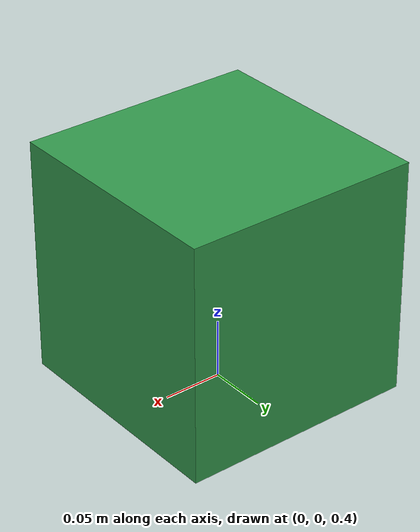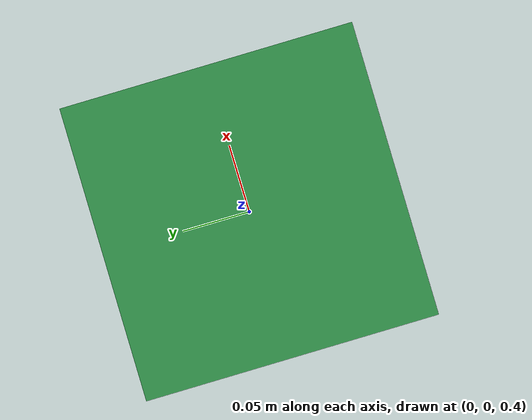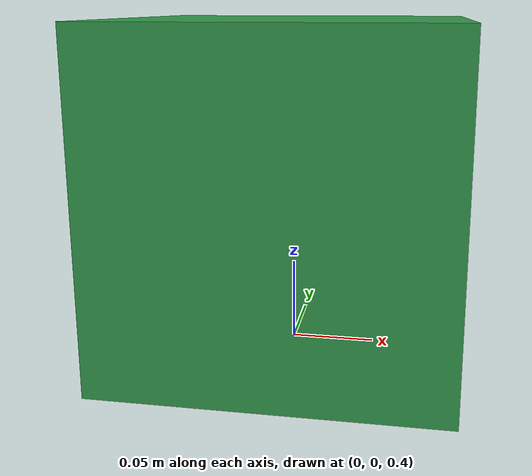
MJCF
<mujoco model="box_6d">
    <compiler angle="degree" />
    <option timestep="0.02" gravity="0 0 -9.81" viscosity="0.0" integrator="Euler"/>

    <asset>
        <texture type="skybox" builtin="gradient" rgb1="0.3 0.5 0.7" rgb2="0 0 0" width="512" height="3072"/>
        <texture type="2d" name="groundplane" builtin="checker" mark="edge" rgb1="0.2 0.3 0.4" rgb2="0.1 0.2 0.3"
            markrgb="0.8 0.8 0.8" width="300" height="300"/>
        <material name="groundplane" texture="groundplane" texuniform="true" texrepeat="5 5" reflectance="0.2"/>
    </asset>

    <worldbody>
        <light pos="0 0 10" dir="0 0 -1" directional="true"/>

        <body name="box" pos="0 0 0.5">
            <inertial pos="0 0 0" mass="0.723" diaginertia="0.2711 0.2711 0.4218"/>
            <geom name="body_geom" type="box" size="0.1 0.1 0.1" rgba="0.2 0.6 0.3 1" friction="0.8 0.1 0.1"/>
            <joint name="free_joint" type="free" damping="0"/>
            <site name="box_center" pos="0 0 0" size="0.01" rgba="0 1 0 1"/>
        </body>
    </worldbody>

    <sensor>
        <framepos     name="box_framepos"     objtype="body" objname="box" />
        <framequat    name="box_framequat"    objtype="body" objname="box" />
        <framelinvel  name="box_framelinvel"  objtype="body" objname="box" />
        <frameangvel  name="box_frameangvel"  objtype="body" objname="box" />
    </sensor>

    <actuator>
        <motor name="force_z"  joint="free_joint" gear="0 0 1 0 0 0" ctrlrange="-20 20"/>
        <motor name="torque_x" joint="free_joint" gear="0 0 0 1 0 0" ctrlrange="-20 20"/>
        <motor name="torque_y" joint="free_joint" gear="0 0 0 0 1 0" ctrlrange="-20 20"/>
        <motor name="torque_z" joint="free_joint" gear="0 0 0 0 0 1" ctrlrange="-20 20"/>
    </actuator>
</mujoco>
